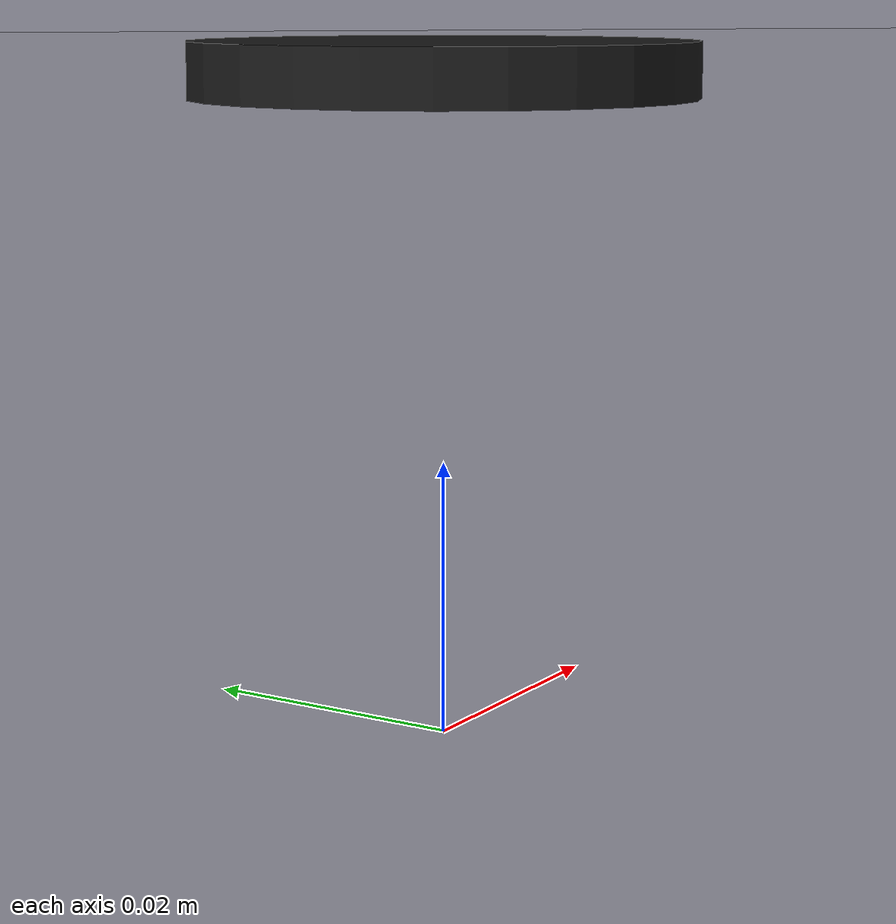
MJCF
<mujoco model="ee_plate">
  <worldbody>
    <body name="ee_frame" pos="0 0 0" quat="1 0 0 0" gravcomp="1">
      <!-- short mount stick from the wrist to the tray (visual only) -->
      <geom
        type="cylinder"
        size="0.018 0.025"
        pos="0 0 0.025"
        rgba="0.1 0.1 0.1 1"
        contype="0"
        conaffinity="0"
        mass="0.125"
      />
      <body name="plate_body" pos="0 0 0.05025" quat="0.930418 0 0 -0.366501" gravcomp="1">
        <geom
          name="plate"
          type="box"
          size="0.195 0.25 0.00425"
          pos="0 0 0"
          rgba="0.6 0.6 0.65 1"
          friction="0.3 0.005 0.0001"
          solref="0.02 1.0"
          solimp="0.0 0.95 0.005 0.5 2.0"
          condim="3"
          contype="1"
          conaffinity="1"
          mass="1.0"
        />
      </body>
    </body>
  </worldbody>
</mujoco>
